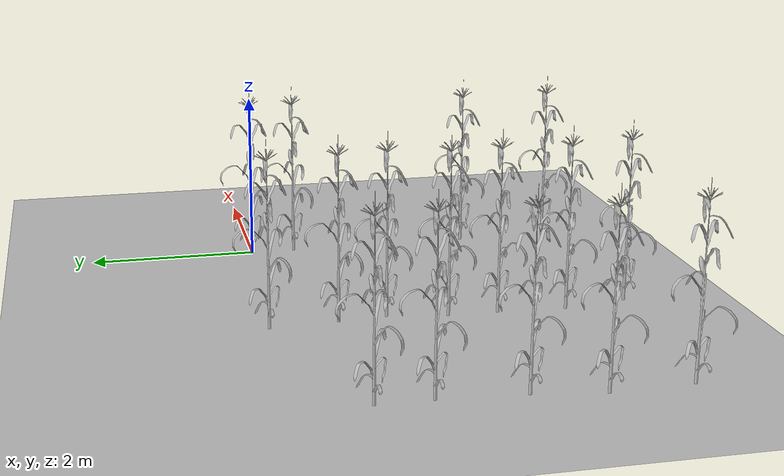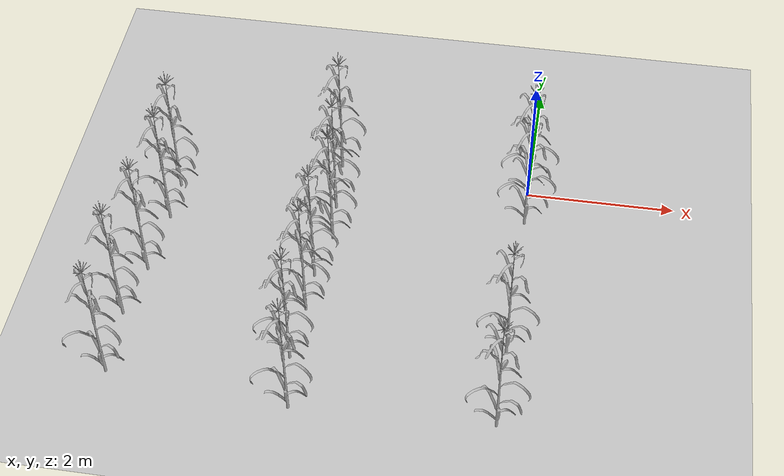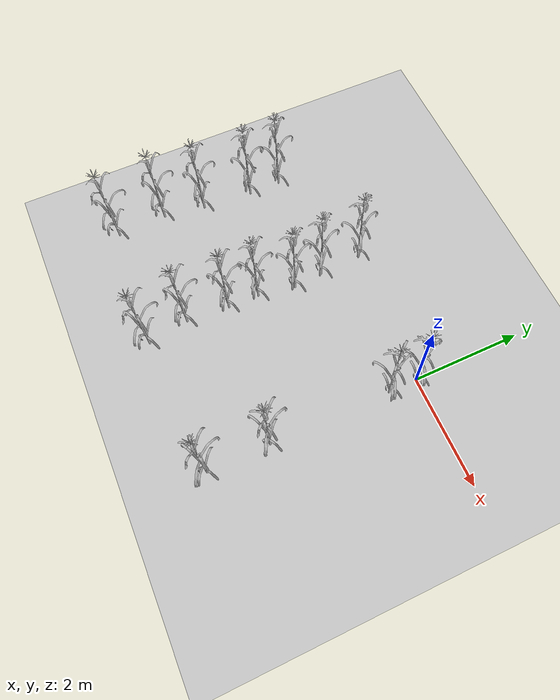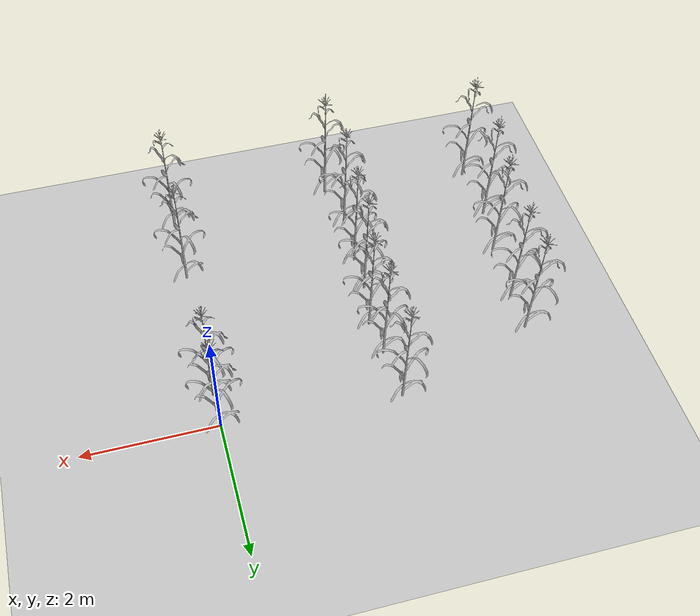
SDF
<sdf version="1.6">
 <world name="default">
  <model name="ground_plane">
   <static>1</static>
   <link name="link">
    <collision name="collision">
     <geometry><plane><normal>0 0 1</normal><size>100 100</size></plane></geometry>
     <surface>
      <contact><collide_bitmask>65535</collide_bitmask></contact>
      <friction><ode><mu>100</mu><mu2>50</mu2></ode></friction>
     </surface>
    </collision>
    <visual name="visual">
     <cast_shadows>0</cast_shadows>
     <geometry><plane><normal>0 0 1</normal><size>100 100</size></plane></geometry>
     <material>
      <script><uri>file://media/materials/scripts/gazebo.material</uri><name>Gazebo/Grey</name></script>
     </material>
    </visual>
   </link>
  </model>
  <model name="corn_stalk2">
   <static>1</static>
   <link name="corn_stalk2_link">
    <collision name="collision">
     <geometry><mesh><scale>1 1 1</scale><uri>model://corn_type2/meshes/model.stl</uri></mesh></geometry>
    </collision>
    <visual name="corn_stalk2_visual">
     <geometry><mesh><uri>model://corn_type2/meshes/model.stl</uri><scale>1 1 1</scale></mesh></geometry>
     <material>
      <script>
       <uri>model://corn_type2/materials/scripts</uri>
       <uri>model://corn_type2/materials/textures</uri>
       <name>corn_type2/Diffuse</name>
      </script>
     </material>
    </visual>
   </link>
   <pose>-0.011189 -3.86643 0 0 -0 0</pose>
  </model>
  <model name="corn_stalk2_clone">
   <static>1</static>
   <link name="corn_stalk2_link">
    <collision name="collision">
     <geometry><mesh><scale>1 1 1</scale><uri>model://corn_type2/meshes/model.stl</uri></mesh></geometry>
    </collision>
    <visual name="corn_stalk2_visual">
     <geometry><mesh><uri>model://corn_type2/meshes/model.stl</uri><scale>1 1 1</scale></mesh></geometry>
     <material>
      <script>
       <uri>model://corn_type2/materials/scripts</uri>
       <uri>model://corn_type2/materials/textures</uri>
       <name>corn_type2/Diffuse</name>
      </script>
     </material>
    </visual>
   </link>
   <pose>-0.009979 -2.74367 0 0 -0 0</pose>
  </model>
  <model name="corn_stalk2_clone_2">
   <static>1</static>
   <link name="corn_stalk2_link">
    <collision name="collision">
     <geometry><mesh><scale>1 1 1</scale><uri>model://corn_type2/meshes/model.stl</uri></mesh></geometry>
    </collision>
    <visual name="corn_stalk2_visual">
     <geometry><mesh><uri>model://corn_type2/meshes/model.stl</uri><scale>1 1 1</scale></mesh></geometry>
     <material>
      <script>
       <uri>model://corn_type2/materials/scripts</uri>
       <uri>model://corn_type2/materials/textures</uri>
       <name>corn_type2/Diffuse</name>
      </script>
     </material>
    </visual>
   </link>
   <pose>0.005579 -0.530416 0 0 -0 0</pose>
  </model>
  <model name="corn_stalk2_clone_3">
   <static>1</static>
   <link name="corn_stalk2_link">
    <collision name="collision">
     <geometry><mesh><scale>1 1 1</scale><uri>model://corn_type2/meshes/model.stl</uri></mesh></geometry>
    </collision>
    <visual name="corn_stalk2_visual">
     <geometry><mesh><uri>model://corn_type2/meshes/model.stl</uri><scale>1 1 1</scale></mesh></geometry>
     <material>
      <script>
       <uri>model://corn_type2/materials/scripts</uri>
       <uri>model://corn_type2/materials/textures</uri>
       <name>corn_type2/Diffuse</name>
      </script>
     </material>
    </visual>
   </link>
  </model>
  <model name="corn_stalk2_clone_33">
   <static>1</static>
   <link name="corn_stalk2_link">
    <collision name="collision">
     <geometry><mesh><scale>1 1 1</scale><uri>model://corn_type2/meshes/model.stl</uri></mesh></geometry>
    </collision>
    <visual name="corn_stalk2_visual">
     <geometry><mesh><uri>model://corn_type2/meshes/model.stl</uri><scale>1 1 1</scale></mesh></geometry>
     <material>
      <script>
       <uri>model://corn_type2/materials/scripts</uri>
       <uri>model://corn_type2/materials/textures</uri>
       <name>corn_type2/Diffuse</name>
      </script>
     </material>
    </visual>
   </link>
   <pose>-2.56415 -3.98063 0 0 -0 0</pose>
  </model>
  <model name="corn_stalk2_clone_34">
   <static>1</static>
   <link name="corn_stalk2_link">
    <collision name="collision">
     <geometry><mesh><scale>1 1 1</scale><uri>model://corn_type2/meshes/model.stl</uri></mesh></geometry>
    </collision>
    <visual name="corn_stalk2_visual">
     <geometry><mesh><uri>model://corn_type2/meshes/model.stl</uri><scale>1 1 1</scale></mesh></geometry>
     <material>
      <script>
       <uri>model://corn_type2/materials/scripts</uri>
       <uri>model://corn_type2/materials/textures</uri>
       <name>corn_type2/Diffuse</name>
      </script>
     </material>
    </visual>
   </link>
   <pose>-2.69293 -3.22838 0 0 -0 0</pose>
  </model>
  <model name="corn_stalk2_clone_35">
   <static>1</static>
   <link name="corn_stalk2_link">
    <collision name="collision">
     <geometry><mesh><scale>1 1 1</scale><uri>model://corn_type2/meshes/model.stl</uri></mesh></geometry>
    </collision>
    <visual name="corn_stalk2_visual">
     <geometry><mesh><uri>model://corn_type2/meshes/model.stl</uri><scale>1 1 1</scale></mesh></geometry>
     <material>
      <script>
       <uri>model://corn_type2/materials/scripts</uri>
       <uri>model://corn_type2/materials/textures</uri>
       <name>corn_type2/Diffuse</name>
      </script>
     </material>
    </visual>
   </link>
   <pose>-2.64149 -2.43872 0 0 -0 0</pose>
  </model>
  <model name="corn_stalk2_clone_36">
   <static>1</static>
   <link name="corn_stalk2_link">
    <collision name="collision">
     <geometry><mesh><scale>1 1 1</scale><uri>model://corn_type2/meshes/model.stl</uri></mesh></geometry>
    </collision>
    <visual name="corn_stalk2_visual">
     <geometry><mesh><uri>model://corn_type2/meshes/model.stl</uri><scale>1 1 1</scale></mesh></geometry>
     <material>
      <script>
       <uri>model://corn_type2/materials/scripts</uri>
       <uri>model://corn_type2/materials/textures</uri>
       <name>corn_type2/Diffuse</name>
      </script>
     </material>
    </visual>
   </link>
   <pose>-2.63657 -1.86303 0 0 -0 0</pose>
  </model>
  <model name="corn_stalk2_clone_37">
   <static>1</static>
   <link name="corn_stalk2_link">
    <collision name="collision">
     <geometry><mesh><scale>1 1 1</scale><uri>model://corn_type2/meshes/model.stl</uri></mesh></geometry>
    </collision>
    <visual name="corn_stalk2_visual">
     <geometry><mesh><uri>model://corn_type2/meshes/model.stl</uri><scale>1 1 1</scale></mesh></geometry>
     <material>
      <script>
       <uri>model://corn_type2/materials/scripts</uri>
       <uri>model://corn_type2/materials/textures</uri>
       <name>corn_type2/Diffuse</name>
      </script>
     </material>
    </visual>
   </link>
   <pose>-2.51708 -1.17985 0 0 -0 0</pose>
  </model>
  <model name="corn_stalk2_clone_38">
   <static>1</static>
   <link name="corn_stalk2_link">
    <collision name="collision">
     <geometry><mesh><scale>1 1 1</scale><uri>model://corn_type2/meshes/model.stl</uri></mesh></geometry>
    </collision>
    <visual name="corn_stalk2_visual">
     <geometry><mesh><uri>model://corn_type2/meshes/model.stl</uri><scale>1 1 1</scale></mesh></geometry>
     <material>
      <script>
       <uri>model://corn_type2/materials/scripts</uri>
       <uri>model://corn_type2/materials/textures</uri>
       <name>corn_type2/Diffuse</name>
      </script>
     </material>
    </visual>
   </link>
   <pose>-2.57184 -0.621888 0 0 -0 0</pose>
  </model>
  <model name="corn_stalk2_clone_39">
   <static>1</static>
   <link name="corn_stalk2_link">
    <collision name="collision">
     <geometry><mesh><scale>1 1 1</scale><uri>model://corn_type2/meshes/model.stl</uri></mesh></geometry>
    </collision>
    <visual name="corn_stalk2_visual">
     <geometry><mesh><uri>model://corn_type2/meshes/model.stl</uri><scale>1 1 1</scale></mesh></geometry>
     <material>
      <script>
       <uri>model://corn_type2/materials/scripts</uri>
       <uri>model://corn_type2/materials/textures</uri>
       <name>corn_type2/Diffuse</name>
      </script>
     </material>
    </visual>
   </link>
   <pose>-2.62261 0.161538 0 0 -0 0</pose>
  </model>
  <model name="corn_stalk2_clone_45">
   <static>1</static>
   <link name="corn_stalk2_link">
    <collision name="collision">
     <geometry><mesh><scale>1 1 1</scale><uri>model://corn_type2/meshes/model.stl</uri></mesh></geometry>
    </collision>
    <visual name="corn_stalk2_visual">
     <geometry><mesh><uri>model://corn_type2/meshes/model.stl</uri><scale>1 1 1</scale></mesh></geometry>
     <material>
      <script>
       <uri>model://corn_type2/materials/scripts</uri>
       <uri>model://corn_type2/materials/textures</uri>
       <name>corn_type2/Diffuse</name>
      </script>
     </material>
    </visual>
   </link>
   <pose>-4.92495 -3.7782 0 0 -0 0</pose>
  </model>
  <model name="corn_stalk2_clone_46">
   <static>1</static>
   <link name="corn_stalk2_link">
    <collision name="collision">
     <geometry><mesh><scale>1 1 1</scale><uri>model://corn_type2/meshes/model.stl</uri></mesh></geometry>
    </collision>
    <visual name="corn_stalk2_visual">
     <geometry><mesh><uri>model://corn_type2/meshes/model.stl</uri><scale>1 1 1</scale></mesh></geometry>
     <material>
      <script>
       <uri>model://corn_type2/materials/scripts</uri>
       <uri>model://corn_type2/materials/textures</uri>
       <name>corn_type2/Diffuse</name>
      </script>
     </material>
    </visual>
   </link>
   <pose>-4.96162 -2.85537 0 0 -0 0</pose>
  </model>
  <model name="corn_stalk2_clone_47">
   <static>1</static>
   <link name="corn_stalk2_link">
    <collision name="collision">
     <geometry><mesh><scale>1 1 1</scale><uri>model://corn_type2/meshes/model.stl</uri></mesh></geometry>
    </collision>
    <visual name="corn_stalk2_visual">
     <geometry><mesh><uri>model://corn_type2/meshes/model.stl</uri><scale>1 1 1</scale></mesh></geometry>
     <material>
      <script>
       <uri>model://corn_type2/materials/scripts</uri>
       <uri>model://corn_type2/materials/textures</uri>
       <name>corn_type2/Diffuse</name>
      </script>
     </material>
    </visual>
   </link>
   <pose>-4.83878 -2.08288 0 0 -0 0</pose>
  </model>
  <model name="corn_stalk2_clone_48">
   <static>1</static>
   <link name="corn_stalk2_link">
    <collision name="collision">
     <geometry><mesh><scale>1 1 1</scale><uri>model://corn_type2/meshes/model.stl</uri></mesh></geometry>
    </collision>
    <visual name="corn_stalk2_visual">
     <geometry><mesh><uri>model://corn_type2/meshes/model.stl</uri><scale>1 1 1</scale></mesh></geometry>
     <material>
      <script>
       <uri>model://corn_type2/materials/scripts</uri>
       <uri>model://corn_type2/materials/textures</uri>
       <name>corn_type2/Diffuse</name>
      </script>
     </material>
    </visual>
   </link>
   <pose>-4.77616 -1.13983 0 0 -0 0</pose>
  </model>
  <model name="corn_stalk2_clone_49">
   <static>1</static>
   <link name="corn_stalk2_link">
    <collision name="collision">
     <geometry><mesh><scale>1 1 1</scale><uri>model://corn_type2/meshes/model.stl</uri></mesh></geometry>
    </collision>
    <visual name="corn_stalk2_visual">
     <geometry><mesh><uri>model://corn_type2/meshes/model.stl</uri><scale>1 1 1</scale></mesh></geometry>
     <material>
      <script>
       <uri>model://corn_type2/materials/scripts</uri>
       <uri>model://corn_type2/materials/textures</uri>
       <name>corn_type2/Diffuse</name>
      </script>
     </material>
    </visual>
   </link>
   <pose>-4.77644 -0.536277 0 0 -0 0</pose>
  </model>
 </world>
</sdf>
